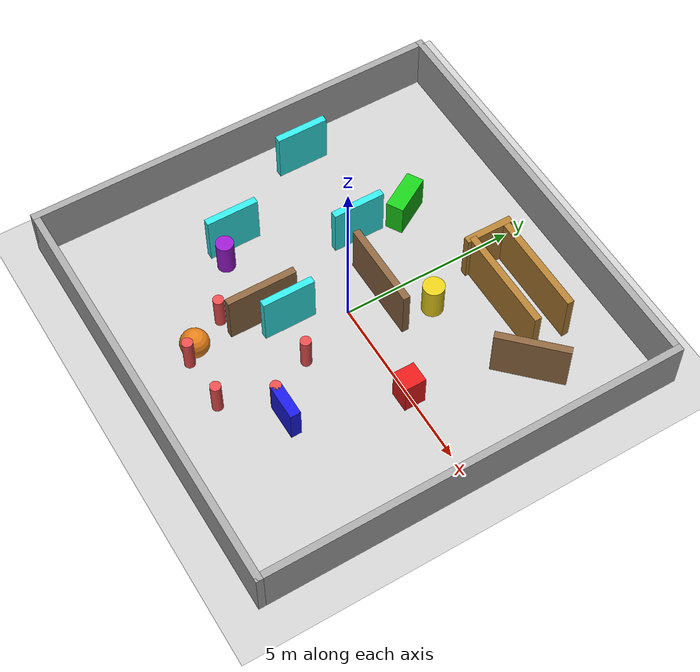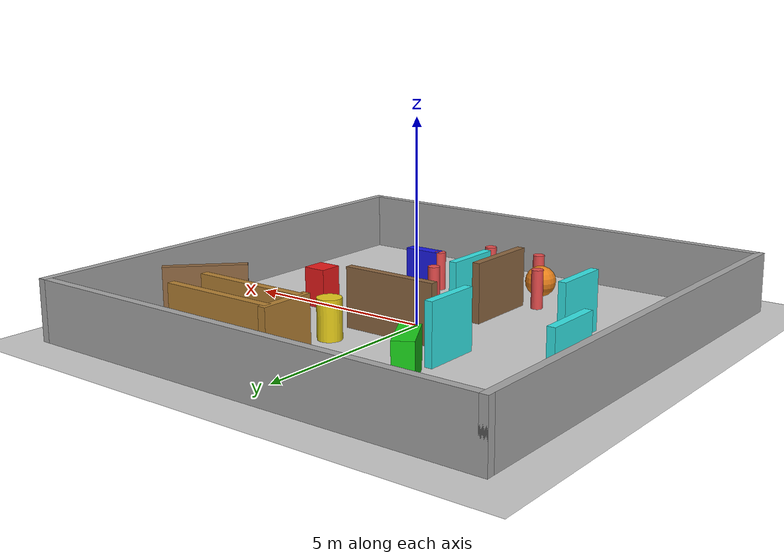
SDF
<?xml version="1.0"?>
<sdf version="1.6">
  <world name="my_custom_world">

    <include><uri>model://ground_plane</uri></include>
    <include><uri>model://sun</uri></include>

    <light name="ambient_fill" type="directional">
      <cast_shadows>false</cast_shadows>
      <diffuse>0.5 0.5 0.5 1</diffuse>
      <specular>0.0 0.0 0.0 1</specular>
      <direction>0 0 -1</direction>
    </light>

    <physics name="default_physics" default="true" type="ode">
      <max_step_size>0.001</max_step_size>
      <real_time_factor>1.0</real_time_factor>
    </physics>

  <model name="bound_N">
    <static>true</static>
    <pose>0 6.0 0.75 0 0 0.000000</pose>
    <link name="link">
      <collision name="col">
        <geometry>
          <box><size>12.2 0.2 1.5</size></box>
        </geometry>
      </collision>
      <visual name="vis">
        <geometry>
          <box><size>12.2 0.2 1.5</size></box>
        </geometry>
        <material>
          <ambient>0.65 0.65 0.65 1</ambient>
          <diffuse>0.65 0.65 0.65 1</diffuse>
          <specular>0.1 0.1 0.1 1</specular>
        </material>
      </visual>
    </link>
  </model>
  <model name="bound_S">
    <static>true</static>
    <pose>0 -6.0 0.75 0 0 0.000000</pose>
    <link name="link">
      <collision name="col">
        <geometry>
          <box><size>12.2 0.2 1.5</size></box>
        </geometry>
      </collision>
      <visual name="vis">
        <geometry>
          <box><size>12.2 0.2 1.5</size></box>
        </geometry>
        <material>
          <ambient>0.65 0.65 0.65 1</ambient>
          <diffuse>0.65 0.65 0.65 1</diffuse>
          <specular>0.1 0.1 0.1 1</specular>
        </material>
      </visual>
    </link>
  </model>
  <model name="bound_E">
    <static>true</static>
    <pose>6.0 0 0.75 0 0 1.570796</pose>
    <link name="link">
      <collision name="col">
        <geometry>
          <box><size>12.2 0.2 1.5</size></box>
        </geometry>
      </collision>
      <visual name="vis">
        <geometry>
          <box><size>12.2 0.2 1.5</size></box>
        </geometry>
        <material>
          <ambient>0.65 0.65 0.65 1</ambient>
          <diffuse>0.65 0.65 0.65 1</diffuse>
          <specular>0.1 0.1 0.1 1</specular>
        </material>
      </visual>
    </link>
  </model>
  <model name="bound_W">
    <static>true</static>
    <pose>-6.0 0 0.75 0 0 1.570796</pose>
    <link name="link">
      <collision name="col">
        <geometry>
          <box><size>12.2 0.2 1.5</size></box>
        </geometry>
      </collision>
      <visual name="vis">
        <geometry>
          <box><size>12.2 0.2 1.5</size></box>
        </geometry>
        <material>
          <ambient>0.65 0.65 0.65 1</ambient>
          <diffuse>0.65 0.65 0.65 1</diffuse>
          <specular>0.1 0.1 0.1 1</specular>
        </material>
      </visual>
    </link>
  </model>
  <model name="red_box">
    <static>true</static>
    <pose>3 0 0.5 0 0 0.000000</pose>
    <link name="link">
      <collision name="col">
        <geometry>
          <box><size>0.6 0.6 1.0</size></box>
        </geometry>
      </collision>
      <visual name="vis">
        <geometry>
          <box><size>0.6 0.6 1.0</size></box>
        </geometry>
        <material>
          <ambient>0.90 0.10 0.10 1</ambient>
          <diffuse>0.90 0.10 0.10 1</diffuse>
          <specular>0.1 0.1 0.1 1</specular>
        </material>
      </visual>
    </link>
  </model>
  <model name="green_box">
    <static>true</static>
    <pose>-2 3 0.5 0 0 0.523599</pose>
    <link name="link">
      <collision name="col">
        <geometry>
          <box><size>0.5 1.2 1.0</size></box>
        </geometry>
      </collision>
      <visual name="vis">
        <geometry>
          <box><size>0.5 1.2 1.0</size></box>
        </geometry>
        <material>
          <ambient>0.10 0.80 0.10 1</ambient>
          <diffuse>0.10 0.80 0.10 1</diffuse>
          <specular>0.1 0.1 0.1 1</specular>
        </material>
      </visual>
    </link>
  </model>
  <model name="blue_box">
    <static>true</static>
    <pose>2 -3 0.5 0 0 0.000000</pose>
    <link name="link">
      <collision name="col">
        <geometry>
          <box><size>1.0 0.3 1.0</size></box>
        </geometry>
      </collision>
      <visual name="vis">
        <geometry>
          <box><size>1.0 0.3 1.0</size></box>
        </geometry>
        <material>
          <ambient>0.10 0.10 0.90 1</ambient>
          <diffuse>0.10 0.10 0.90 1</diffuse>
          <specular>0.1 0.1 0.1 1</specular>
        </material>
      </visual>
    </link>
  </model>
  <model name="yellow_pillar">
    <static>true</static>
    <pose>1 2 0.5 0 0 0</pose>
    <link name="link">
      <collision name="col">
        <geometry>
          <cylinder>
            <radius>0.3</radius>
            <length>1.0</length>
          </cylinder>
        </geometry>
      </collision>
      <visual name="vis">
        <geometry>
          <cylinder>
            <radius>0.3</radius>
            <length>1.0</length>
          </cylinder>
        </geometry>
        <material>
          <ambient>0.90 0.80 0.10 1</ambient>
          <diffuse>0.90 0.80 0.10 1</diffuse>
          <specular>0.1 0.1 0.1 1</specular>
        </material>
      </visual>
    </link>
  </model>
  <model name="purple_pillar">
    <static>true</static>
    <pose>-3 -2 0.5 0 0 0</pose>
    <link name="link">
      <collision name="col">
        <geometry>
          <cylinder>
            <radius>0.25</radius>
            <length>1.0</length>
          </cylinder>
        </geometry>
      </collision>
      <visual name="vis">
        <geometry>
          <cylinder>
            <radius>0.25</radius>
            <length>1.0</length>
          </cylinder>
        </geometry>
        <material>
          <ambient>0.60 0.10 0.80 1</ambient>
          <diffuse>0.60 0.10 0.80 1</diffuse>
          <specular>0.1 0.1 0.1 1</specular>
        </material>
      </visual>
    </link>
  </model>
  <model name="orange_ball">
    <static>true</static>
    <pose>-1 -4 0.4 0 0 0</pose>
    <link name="link">
      <collision name="col">
        <geometry>
          <sphere><radius>0.4</radius></sphere>
        </geometry>
      </collision>
      <visual name="vis">
        <geometry>
          <sphere><radius>0.4</radius></sphere>
        </geometry>
        <material>
          <ambient>0.90 0.50 0.10 1</ambient>
          <diffuse>0.90 0.50 0.10 1</diffuse>
          <specular>0.2 0.2 0.2 1</specular>
        </material>
      </visual>
    </link>
  </model>
  <model name="wall_horizontal">
    <static>true</static>
    <pose>0 1 0.75 0 0 0.000000</pose>
    <link name="link">
      <collision name="col">
        <geometry>
          <box><size>2.5 0.2 1.5</size></box>
        </geometry>
      </collision>
      <visual name="vis">
        <geometry>
          <box><size>2.5 0.2 1.5</size></box>
        </geometry>
        <material>
          <ambient>0.55 0.40 0.25 1</ambient>
          <diffuse>0.55 0.40 0.25 1</diffuse>
          <specular>0.1 0.1 0.1 1</specular>
        </material>
      </visual>
    </link>
  </model>
  <model name="wall_vertical">
    <static>true</static>
    <pose>-1 -2 0.75 0 0 1.570796</pose>
    <link name="link">
      <collision name="col">
        <geometry>
          <box><size>2.0 0.2 1.5</size></box>
        </geometry>
      </collision>
      <visual name="vis">
        <geometry>
          <box><size>2.0 0.2 1.5</size></box>
        </geometry>
        <material>
          <ambient>0.55 0.40 0.25 1</ambient>
          <diffuse>0.55 0.40 0.25 1</diffuse>
          <specular>0.1 0.1 0.1 1</specular>
        </material>
      </visual>
    </link>
  </model>
  <model name="wall_diagonal">
    <static>true</static>
    <pose>4 3 0.75 0 0 0.785398</pose>
    <link name="link">
      <collision name="col">
        <geometry>
          <box><size>2.0 0.2 1.5</size></box>
        </geometry>
      </collision>
      <visual name="vis">
        <geometry>
          <box><size>2.0 0.2 1.5</size></box>
        </geometry>
        <material>
          <ambient>0.55 0.40 0.25 1</ambient>
          <diffuse>0.55 0.40 0.25 1</diffuse>
          <specular>0.1 0.1 0.1 1</specular>
        </material>
      </visual>
    </link>
  </model>
  <model name="ring_0">
    <static>true</static>
    <pose>1.5 -3.0 0.5 0 0 0</pose>
    <link name="link">
      <collision name="col">
        <geometry>
          <cylinder>
            <radius>0.15</radius>
            <length>1.0</length>
          </cylinder>
        </geometry>
      </collision>
      <visual name="vis">
        <geometry>
          <cylinder>
            <radius>0.15</radius>
            <length>1.0</length>
          </cylinder>
        </geometry>
        <material>
          <ambient>0.90 0.30 0.30 1</ambient>
          <diffuse>0.90 0.30 0.30 1</diffuse>
          <specular>0.1 0.1 0.1 1</specular>
        </material>
      </visual>
    </link>
  </model>
  <model name="ring_1">
    <static>true</static>
    <pose>0.7500000000000002 -1.700961894323342 0.5 0 0 0</pose>
    <link name="link">
      <collision name="col">
        <geometry>
          <cylinder>
            <radius>0.15</radius>
            <length>1.0</length>
          </cylinder>
        </geometry>
      </collision>
      <visual name="vis">
        <geometry>
          <cylinder>
            <radius>0.15</radius>
            <length>1.0</length>
          </cylinder>
        </geometry>
        <material>
          <ambient>0.90 0.30 0.30 1</ambient>
          <diffuse>0.90 0.30 0.30 1</diffuse>
          <specular>0.1 0.1 0.1 1</specular>
        </material>
      </visual>
    </link>
  </model>
  <model name="ring_2">
    <static>true</static>
    <pose>-0.7499999999999997 -1.700961894323342 0.5 0 0 0</pose>
    <link name="link">
      <collision name="col">
        <geometry>
          <cylinder>
            <radius>0.15</radius>
            <length>1.0</length>
          </cylinder>
        </geometry>
      </collision>
      <visual name="vis">
        <geometry>
          <cylinder>
            <radius>0.15</radius>
            <length>1.0</length>
          </cylinder>
        </geometry>
        <material>
          <ambient>0.90 0.30 0.30 1</ambient>
          <diffuse>0.90 0.30 0.30 1</diffuse>
          <specular>0.1 0.1 0.1 1</specular>
        </material>
      </visual>
    </link>
  </model>
  <model name="ring_3">
    <static>true</static>
    <pose>-1.5 -3.0 0.5 0 0 0</pose>
    <link name="link">
      <collision name="col">
        <geometry>
          <cylinder>
            <radius>0.15</radius>
            <length>1.0</length>
          </cylinder>
        </geometry>
      </collision>
      <visual name="vis">
        <geometry>
          <cylinder>
            <radius>0.15</radius>
            <length>1.0</length>
          </cylinder>
        </geometry>
        <material>
          <ambient>0.90 0.30 0.30 1</ambient>
          <diffuse>0.90 0.30 0.30 1</diffuse>
          <specular>0.1 0.1 0.1 1</specular>
        </material>
      </visual>
    </link>
  </model>
  <model name="ring_4">
    <static>true</static>
    <pose>-0.7500000000000007 -4.299038105676658 0.5 0 0 0</pose>
    <link name="link">
      <collision name="col">
        <geometry>
          <cylinder>
            <radius>0.15</radius>
            <length>1.0</length>
          </cylinder>
        </geometry>
      </collision>
      <visual name="vis">
        <geometry>
          <cylinder>
            <radius>0.15</radius>
            <length>1.0</length>
          </cylinder>
        </geometry>
        <material>
          <ambient>0.90 0.30 0.30 1</ambient>
          <diffuse>0.90 0.30 0.30 1</diffuse>
          <specular>0.1 0.1 0.1 1</specular>
        </material>
      </visual>
    </link>
  </model>
  <model name="ring_5">
    <static>true</static>
    <pose>0.749999999999999 -4.299038105676658 0.5 0 0 0</pose>
    <link name="link">
      <collision name="col">
        <geometry>
          <cylinder>
            <radius>0.15</radius>
            <length>1.0</length>
          </cylinder>
        </geometry>
      </collision>
      <visual name="vis">
        <geometry>
          <cylinder>
            <radius>0.15</radius>
            <length>1.0</length>
          </cylinder>
        </geometry>
        <material>
          <ambient>0.90 0.30 0.30 1</ambient>
          <diffuse>0.90 0.30 0.30 1</diffuse>
          <specular>0.1 0.1 0.1 1</specular>
        </material>
      </visual>
    </link>
  </model>
  <model name="slalom_0">
    <static>true</static>
    <pose>-5.0 1.5 0.75 0 0 1.570796</pose>
    <link name="link">
      <collision name="col">
        <geometry>
          <box><size>1.5 0.2 1.5</size></box>
        </geometry>
      </collision>
      <visual name="vis">
        <geometry>
          <box><size>1.5 0.2 1.5</size></box>
        </geometry>
        <material>
          <ambient>0.20 0.90 0.90 1</ambient>
          <diffuse>0.20 0.90 0.90 1</diffuse>
          <specular>0.1 0.1 0.1 1</specular>
        </material>
      </visual>
    </link>
  </model>
  <model name="slalom_1">
    <static>true</static>
    <pose>-3.5 -1.5 0.75 0 0 1.570796</pose>
    <link name="link">
      <collision name="col">
        <geometry>
          <box><size>1.5 0.2 1.5</size></box>
        </geometry>
      </collision>
      <visual name="vis">
        <geometry>
          <box><size>1.5 0.2 1.5</size></box>
        </geometry>
        <material>
          <ambient>0.20 0.90 0.90 1</ambient>
          <diffuse>0.20 0.90 0.90 1</diffuse>
          <specular>0.1 0.1 0.1 1</specular>
        </material>
      </visual>
    </link>
  </model>
  <model name="slalom_2">
    <static>true</static>
    <pose>-2.0 1.5 0.75 0 0 1.570796</pose>
    <link name="link">
      <collision name="col">
        <geometry>
          <box><size>1.5 0.2 1.5</size></box>
        </geometry>
      </collision>
      <visual name="vis">
        <geometry>
          <box><size>1.5 0.2 1.5</size></box>
        </geometry>
        <material>
          <ambient>0.20 0.90 0.90 1</ambient>
          <diffuse>0.20 0.90 0.90 1</diffuse>
          <specular>0.1 0.1 0.1 1</specular>
        </material>
      </visual>
    </link>
  </model>
  <model name="slalom_3">
    <static>true</static>
    <pose>-0.5 -1.5 0.75 0 0 1.570796</pose>
    <link name="link">
      <collision name="col">
        <geometry>
          <box><size>1.5 0.2 1.5</size></box>
        </geometry>
      </collision>
      <visual name="vis">
        <geometry>
          <box><size>1.5 0.2 1.5</size></box>
        </geometry>
        <material>
          <ambient>0.20 0.90 0.90 1</ambient>
          <diffuse>0.20 0.90 0.90 1</diffuse>
          <specular>0.1 0.1 0.1 1</specular>
        </material>
      </visual>
    </link>
  </model>
  <model name="corridor_left">
    <static>true</static>
    <pose>2 4.5 0.75 0 0 0.000000</pose>
    <link name="link">
      <collision name="col">
        <geometry>
          <box><size>3.0 0.2 1.5</size></box>
        </geometry>
      </collision>
      <visual name="vis">
        <geometry>
          <box><size>3.0 0.2 1.5</size></box>
        </geometry>
        <material>
          <ambient>0.70 0.50 0.20 1</ambient>
          <diffuse>0.70 0.50 0.20 1</diffuse>
          <specular>0.1 0.1 0.1 1</specular>
        </material>
      </visual>
    </link>
  </model>
  <model name="corridor_right">
    <static>true</static>
    <pose>2 3.5 0.75 0 0 0.000000</pose>
    <link name="link">
      <collision name="col">
        <geometry>
          <box><size>3.0 0.2 1.5</size></box>
        </geometry>
      </collision>
      <visual name="vis">
        <geometry>
          <box><size>3.0 0.2 1.5</size></box>
        </geometry>
        <material>
          <ambient>0.70 0.50 0.20 1</ambient>
          <diffuse>0.70 0.50 0.20 1</diffuse>
          <specular>0.1 0.1 0.1 1</specular>
        </material>
      </visual>
    </link>
  </model>
  <model name="corridor_back">
    <static>true</static>
    <pose>0.5 4 0.75 0 0 1.570796</pose>
    <link name="link">
      <collision name="col">
        <geometry>
          <box><size>1.4 0.2 1.5</size></box>
        </geometry>
      </collision>
      <visual name="vis">
        <geometry>
          <box><size>1.4 0.2 1.5</size></box>
        </geometry>
        <material>
          <ambient>0.70 0.50 0.20 1</ambient>
          <diffuse>0.70 0.50 0.20 1</diffuse>
          <specular>0.1 0.1 0.1 1</specular>
        </material>
      </visual>
    </link>
  </model>
  </world>
</sdf>
